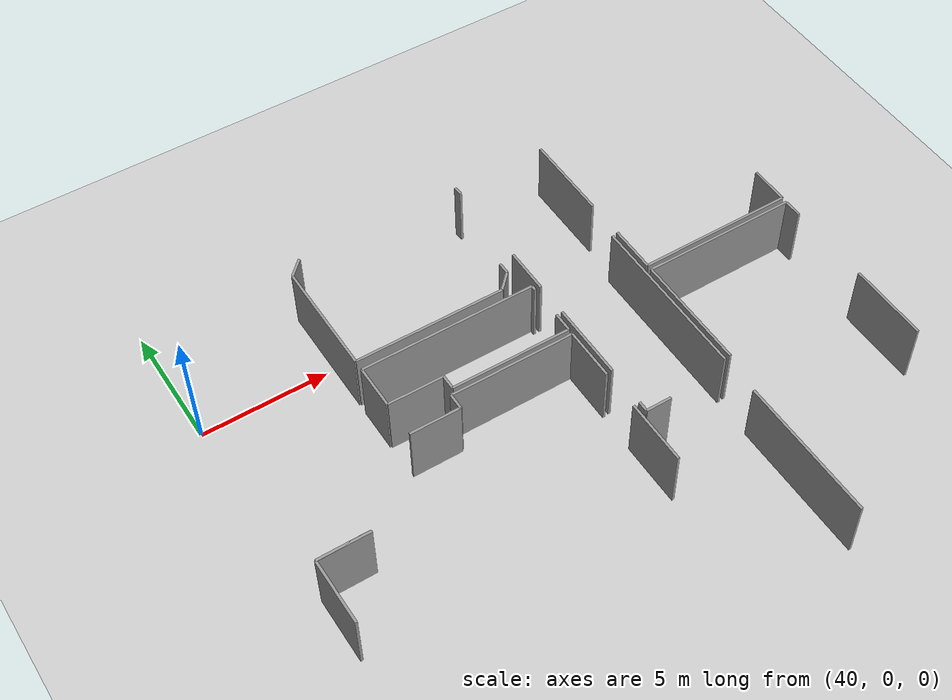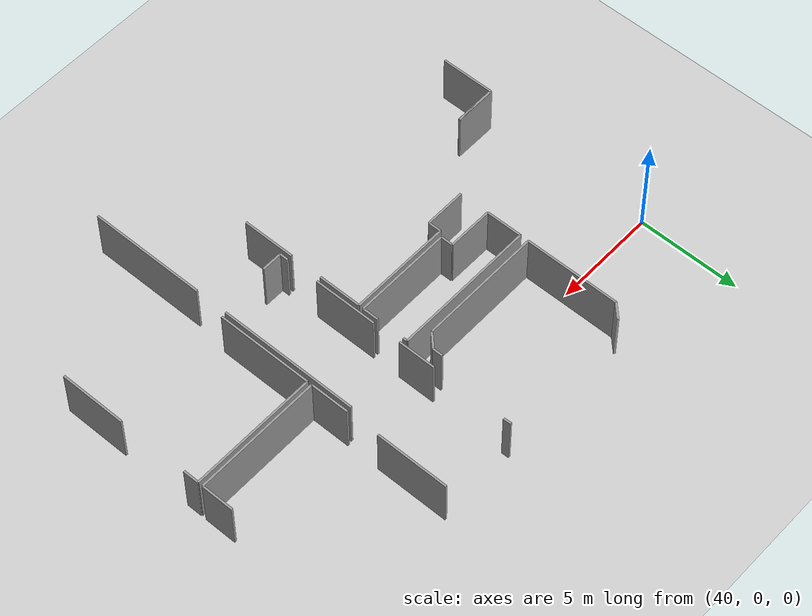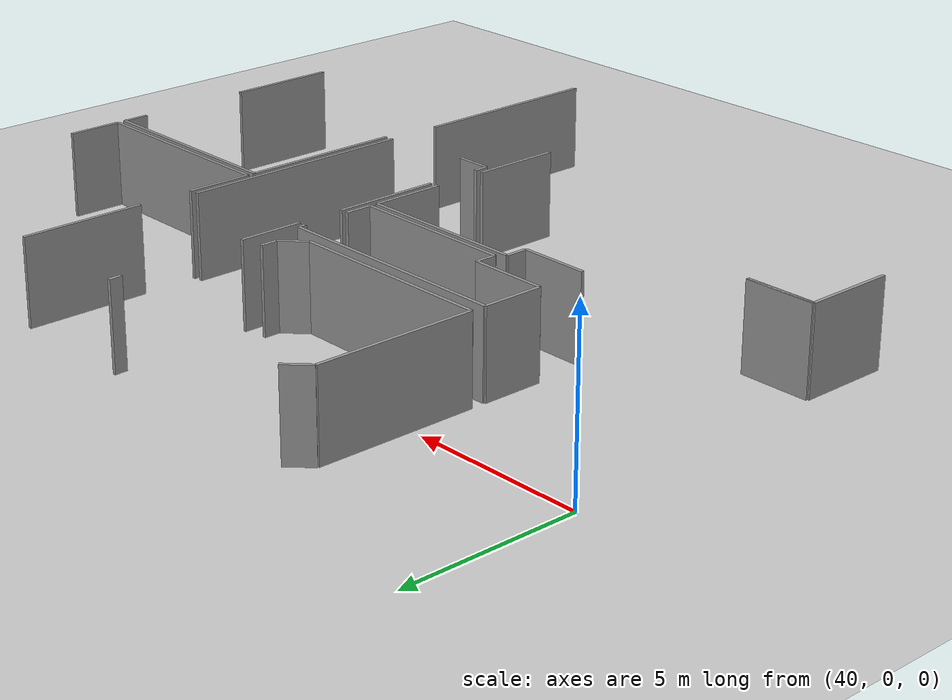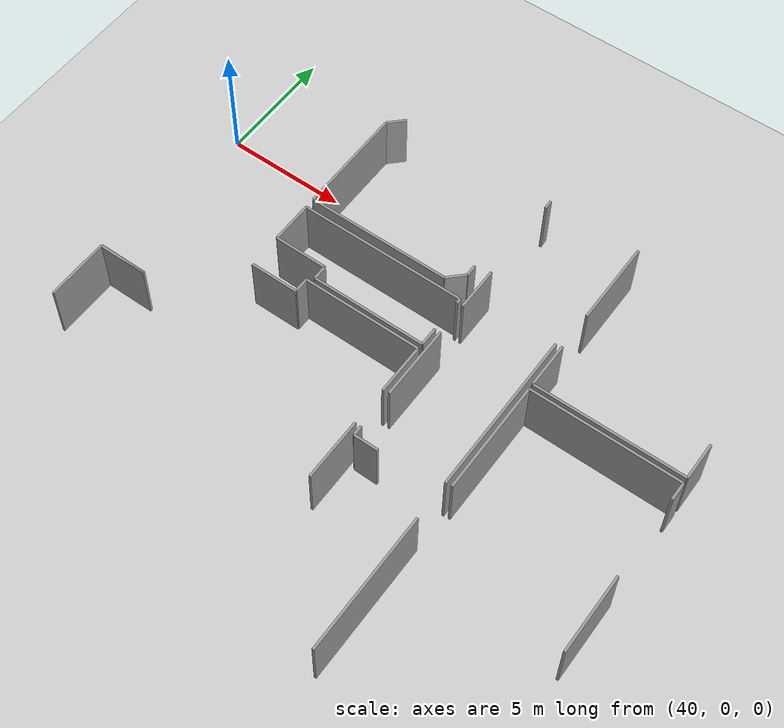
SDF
<sdf version="1.6">
 <world name="default">
  <model name="ground_plane">
   <static>1</static>
   <link name="link">
    <collision name="collision">
     <geometry><plane><normal>0 0 1</normal><size>100 100</size></plane></geometry>
     <surface><friction><ode><mu>100</mu><mu2>50</mu2></ode></friction></surface>
    </collision>
    <visual name="visual">
     <cast_shadows>0</cast_shadows>
     <geometry><plane><normal>0 0 1</normal><size>100 100</size></plane></geometry>
     <material>
      <script><uri>file://media/materials/scripts/gazebo.material</uri><name>Gazebo/Grey</name></script>
     </material>
    </visual>
   </link>
  </model>
  <model name="50010540">
   <static>1</static>
   <link name="Wall_245">
    <collision name="Wall_245_Collision">
     <geometry><box><size>4.60790482183 0.1 2.5</size></box></geometry>
     <pose>2.30395241091 0 1.25 0 0 0</pose>
    </collision>
    <visual name="Wall_245_Visual">
     <pose>2.30395241091 0 1.25 0 0 0</pose>
     <geometry><box><size>4.60790482183 0.1 2.5</size></box></geometry>
     <material>
      <script><uri>file://media/materials/scripts/gazebo.material</uri><name>Gazebo/Grey</name></script>
      <ambient>1 1 1 1</ambient>
     </material>
    </visual>
    <pose>107.857792014 -24.6736194525 0 0 0 1.57079632679</pose>
   </link>
   <link name="Wall_246">
    <collision name="Wall_246_Collision">
     <geometry><box><size>0.82382864834 0.1 2.5</size></box></geometry>
     <pose>0.41191432417 0 1.25 0 0 0</pose>
    </collision>
    <visual name="Wall_246_Visual">
     <pose>0.41191432417 0 1.25 0 0 0</pose>
     <geometry><box><size>0.82382864834 0.1 2.5</size></box></geometry>
     <material>
      <script><uri>file://media/materials/scripts/gazebo.material</uri><name>Gazebo/Grey</name></script>
      <ambient>1 1 1 1</ambient>
     </material>
    </visual>
    <pose>107.857792014 -20.0657146307 0 0 0 0.783870780775</pose>
   </link>
   <link name="Wall_252">
    <collision name="Wall_252_Collision">
     <geometry><box><size>0.477924587059 0.1 2.5</size></box></geometry>
     <pose>0.23896229353 0 1.25 0 0 0</pose>
    </collision>
    <visual name="Wall_252_Visual">
     <pose>0.23896229353 0 1.25 0 0 0</pose>
     <geometry><box><size>0.477924587059 0.1 2.5</size></box></geometry>
     <material>
      <script><uri>file://media/materials/scripts/gazebo.material</uri><name>Gazebo/Grey</name></script>
      <ambient>1 1 1 1</ambient>
     </material>
    </visual>
    <pose>114.430526162 -23.5935861504 0 0 0 -1.57079632679</pose>
   </link>
   <link name="Wall_253">
    <collision name="Wall_253_Collision">
     <geometry><box><size>0.841896793089 0.1 2.5</size></box></geometry>
     <pose>0.420948396545 0 1.25 0 0 0</pose>
    </collision>
    <visual name="Wall_253_Visual">
     <pose>0.420948396545 0 1.25 0 0 0</pose>
     <geometry><box><size>0.841896793089 0.1 2.5</size></box></geometry>
     <material>
      <script><uri>file://media/materials/scripts/gazebo.material</uri><name>Gazebo/Grey</name></script>
      <ambient>1 1 1 1</ambient>
     </material>
    </visual>
    <pose>114.430526162 -24.0715107374 0 0 0 -2.35331203848</pose>
   </link>
   <link name="Wall_254">
    <collision name="Wall_254_Collision">
     <geometry><box><size>5.97914380405 0.1 2.5</size></box></geometry>
     <pose>2.98957190203 0 1.25 0 0 0</pose>
    </collision>
    <visual name="Wall_254_Visual">
     <pose>2.98957190203 0 1.25 0 0 0</pose>
     <geometry><box><size>5.97914380405 0.1 2.5</size></box></geometry>
     <material>
      <script><uri>file://media/materials/scripts/gazebo.material</uri><name>Gazebo/Grey</name></script>
      <ambient>1 1 1 1</ambient>
     </material>
    </visual>
    <pose>113.836933656 -24.6685351484 0 0 0 -3.14074231366</pose>
   </link>
   <link name="Wall_269">
    <collision name="Wall_269_Collision">
     <geometry><box><size>2.04223785646 0.1 2.5</size></box></geometry>
     <pose>1.02111892823 0 1.25 0 0 0</pose>
    </collision>
    <visual name="Wall_269_Visual">
     <pose>1.02111892823 0 1.25 0 0 0</pose>
     <geometry><box><size>2.04223785646 0.1 2.5</size></box></geometry>
     <material>
      <script><uri>file://media/materials/scripts/gazebo.material</uri><name>Gazebo/Grey</name></script>
      <ambient>1 1 1 1</ambient>
     </material>
    </visual>
    <pose>104.925419614 -30.9579464496 0 0 0 3.14159265359</pose>
   </link>
   <link name="Wall_270">
    <collision name="Wall_270_Collision">
     <geometry><box><size>2.60684982872 0.1 2.5</size></box></geometry>
     <pose>1.30342491436 0 1.25 0 0 0</pose>
    </collision>
    <visual name="Wall_270_Visual">
     <pose>1.30342491436 0 1.25 0 0 0</pose>
     <geometry><box><size>2.60684982872 0.1 2.5</size></box></geometry>
     <material>
      <script><uri>file://media/materials/scripts/gazebo.material</uri><name>Gazebo/Grey</name></script>
      <ambient>1 1 1 1</ambient>
     </material>
    </visual>
    <pose>102.883181758 -30.9579464496 0 0 0 -1.57079632679</pose>
   </link>
   <link name="Wall_280">
    <collision name="Wall_280_Collision">
     <geometry><box><size>2.04808480619 0.1 2.5</size></box></geometry>
     <pose>1.0240424031 0 1.25 0 0 0</pose>
    </collision>
    <visual name="Wall_280_Visual">
     <pose>1.0240424031 0 1.25 0 0 0</pose>
     <geometry><box><size>2.04808480619 0.1 2.5</size></box></geometry>
     <material>
      <script><uri>file://media/materials/scripts/gazebo.material</uri><name>Gazebo/Grey</name></script>
      <ambient>1 1 1 1</ambient>
     </material>
    </visual>
    <pose>104.92669069 -30.9443459361 0 0 0 3.14159265359</pose>
   </link>
   <link name="Wall_285">
    <collision name="Wall_285_Collision">
     <geometry><box><size>1.75980476272 0.1 2.5</size></box></geometry>
     <pose>0.879902381361 0 1.25 0 0 0</pose>
    </collision>
    <visual name="Wall_285_Visual">
     <pose>0.879902381361 0 1.25 0 0 0</pose>
     <geometry><box><size>1.75980476272 0.1 2.5</size></box></geometry>
     <material>
      <script><uri>file://media/materials/scripts/gazebo.material</uri><name>Gazebo/Grey</name></script>
      <ambient>1 1 1 1</ambient>
     </material>
    </visual>
    <pose>107.855249862 -26.8603786535 0 0 0 1.57079632679</pose>
   </link>
   <link name="Wall_286">
    <collision name="Wall_286_Collision">
     <geometry><box><size>6.97439417339 0.1 2.5</size></box></geometry>
     <pose>3.48719708669 0 1.25 0 0 0</pose>
    </collision>
    <visual name="Wall_286_Visual">
     <pose>3.48719708669 0 1.25 0 0 0</pose>
     <geometry><box><size>6.97439417339 0.1 2.5</size></box></geometry>
     <material>
      <script><uri>file://media/materials/scripts/gazebo.material</uri><name>Gazebo/Grey</name></script>
      <ambient>1 1 1 1</ambient>
     </material>
    </visual>
    <pose>107.855249862 -25.1005738908 0 0 0 0.0</pose>
   </link>
   <link name="Wall_287">
    <collision name="Wall_287_Collision">
     <geometry><box><size>0.215066064177 0.1 2.5</size></box></geometry>
     <pose>0.107533032088 0 1.25 0 0 0</pose>
    </collision>
    <visual name="Wall_287_Visual">
     <pose>0.107533032088 0 1.25 0 0 0</pose>
     <geometry><box><size>0.215066064177 0.1 2.5</size></box></geometry>
     <material>
      <script><uri>file://media/materials/scripts/gazebo.material</uri><name>Gazebo/Grey</name></script>
      <ambient>1 1 1 1</ambient>
     </material>
    </visual>
    <pose>114.829644035 -25.1005738908 0 0 0 -1.57079632679</pose>
   </link>
   <link name="Wall_288">
    <collision name="Wall_288_Collision">
     <geometry><box><size>0.788829783854 0.1 2.5</size></box></geometry>
     <pose>0.394414891927 0 1.25 0 0 0</pose>
    </collision>
    <visual name="Wall_288_Visual">
     <pose>0.394414891927 0 1.25 0 0 0</pose>
     <geometry><box><size>0.788829783854 0.1 2.5</size></box></geometry>
     <material>
      <script><uri>file://media/materials/scripts/gazebo.material</uri><name>Gazebo/Grey</name></script>
      <ambient>1 1 1 1</ambient>
     </material>
    </visual>
    <pose>114.829644035 -26.6706070024 0 0 0 -1.57079632679</pose>
   </link>
   <link name="Wall_289">
    <collision name="Wall_289_Collision">
     <geometry><box><size>4.76145080618 0.1 2.5</size></box></geometry>
     <pose>2.38072540309 0 1.25 0 0 0</pose>
    </collision>
    <visual name="Wall_289_Visual">
     <pose>2.38072540309 0 1.25 0 0 0</pose>
     <geometry><box><size>4.76145080618 0.1 2.5</size></box></geometry>
     <material>
      <script><uri>file://media/materials/scripts/gazebo.material</uri><name>Gazebo/Grey</name></script>
      <ambient>1 1 1 1</ambient>
     </material>
    </visual>
    <pose>114.829644035 -27.4594367862 0 0 0 3.14159265359</pose>
   </link>
   <link name="Wall_290">
    <collision name="Wall_290_Collision">
     <geometry><box><size>0.590160600456 0.1 2.5</size></box></geometry>
     <pose>0.295080300228 0 1.25 0 0 0</pose>
    </collision>
    <visual name="Wall_290_Visual">
     <pose>0.295080300228 0 1.25 0 0 0</pose>
     <geometry><box><size>0.590160600456 0.1 2.5</size></box></geometry>
     <material>
      <script><uri>file://media/materials/scripts/gazebo.material</uri><name>Gazebo/Grey</name></script>
      <ambient>1 1 1 1</ambient>
     </material>
    </visual>
    <pose>110.068193229 -27.4594367862 0 0 0 1.57079632679</pose>
   </link>
   <link name="Wall_291">
    <collision name="Wall_291_Collision">
     <geometry><box><size>2.21296125419 0.1 2.5</size></box></geometry>
     <pose>1.1064806271 0 1.25 0 0 0</pose>
    </collision>
    <visual name="Wall_291_Visual">
     <pose>1.1064806271 0 1.25 0 0 0</pose>
     <geometry><box><size>2.21296125419 0.1 2.5</size></box></geometry>
     <material>
      <script><uri>file://media/materials/scripts/gazebo.material</uri><name>Gazebo/Grey</name></script>
      <ambient>1 1 1 1</ambient>
     </material>
    </visual>
    <pose>110.068193229 -26.8692761858 0 0 0 3.13757199748</pose>
   </link>
   <link name="Wall_292">
    <collision name="Wall_292_Collision">
     <geometry><box><size>1.89593700547 0.1 2.5</size></box></geometry>
     <pose>0.947968502736 0 1.25 0 0 0</pose>
    </collision>
    <visual name="Wall_292_Visual">
     <pose>0.947968502736 0 1.25 0 0 0</pose>
     <geometry><box><size>1.89593700547 0.1 2.5</size></box></geometry>
     <material>
      <script><uri>file://media/materials/scripts/gazebo.material</uri><name>Gazebo/Grey</name></script>
      <ambient>1 1 1 1</ambient>
     </material>
    </visual>
    <pose>118.869123657 -26.5217639993 0 0 0 1.57079632679</pose>
   </link>
   <link name="Wall_293">
    <collision name="Wall_293_Collision">
     <geometry><box><size>3.53702326705 0.1 2.5</size></box></geometry>
     <pose>1.76851163352 0 1.25 0 0 0</pose>
    </collision>
    <visual name="Wall_293_Visual">
     <pose>1.76851163352 0 1.25 0 0 0</pose>
     <geometry><box><size>3.53702326705 0.1 2.5</size></box></geometry>
     <material>
      <script><uri>file://media/materials/scripts/gazebo.material</uri><name>Gazebo/Grey</name></script>
      <ambient>1 1 1 1</ambient>
     </material>
    </visual>
    <pose>118.869123657 -23.0279573173 0 0 0 1.57079632679</pose>
   </link>
   <link name="Wall_296">
    <collision name="Wall_296_Collision">
     <geometry><box><size>1.56825360509 0.1 2.5</size></box></geometry>
     <pose>0.784126802545 0 1.25 0 0 0</pose>
    </collision>
    <visual name="Wall_296_Visual">
     <pose>0.784126802545 0 1.25 0 0 0</pose>
     <geometry><box><size>1.56825360509 0.1 2.5</size></box></geometry>
     <material>
      <script><uri>file://media/materials/scripts/gazebo.material</uri><name>Gazebo/Grey</name></script>
      <ambient>1 1 1 1</ambient>
     </material>
    </visual>
    <pose>125.045282084 -24.9404183111 0 0 0 -1.57079632679</pose>
   </link>
   <link name="Wall_297">
    <collision name="Wall_297_Collision">
     <geometry><box><size>6.17617230305 0.1 2.5</size></box></geometry>
     <pose>3.08808615153 0 1.25 0 0 0</pose>
    </collision>
    <visual name="Wall_297_Visual">
     <pose>3.08808615153 0 1.25 0 0 0</pose>
     <geometry><box><size>6.17617230305 0.1 2.5</size></box></geometry>
     <material>
      <script><uri>file://media/materials/scripts/gazebo.material</uri><name>Gazebo/Grey</name></script>
      <ambient>1 1 1 1</ambient>
     </material>
    </visual>
    <pose>125.045282084 -26.5086719162 0 0 0 -3.13947287903</pose>
   </link>
   <link name="Wall_300">
    <collision name="Wall_300_Collision">
     <geometry><box><size>1.99813151824 0.1 2.5</size></box></geometry>
     <pose>0.999065759118 0 1.25 0 0 0</pose>
    </collision>
    <visual name="Wall_300_Visual">
     <pose>0.999065759118 0 1.25 0 0 0</pose>
     <geometry><box><size>1.99813151824 0.1 2.5</size></box></geometry>
     <material>
      <script><uri>file://media/materials/scripts/gazebo.material</uri><name>Gazebo/Grey</name></script>
      <ambient>1 1 1 1</ambient>
     </material>
    </visual>
    <pose>107.862876318 -28.3209721189 0 0 0 0.0</pose>
   </link>
   <link name="Wall_301">
    <collision name="Wall_301_Collision">
     <geometry><box><size>0.627403128118 0.1 2.5</size></box></geometry>
     <pose>0.313701564059 0 1.25 0 0 0</pose>
    </collision>
    <visual name="Wall_301_Visual">
     <pose>0.313701564059 0 1.25 0 0 0</pose>
     <geometry><box><size>0.627403128118 0.1 2.5</size></box></geometry>
     <material>
      <script><uri>file://media/materials/scripts/gazebo.material</uri><name>Gazebo/Grey</name></script>
      <ambient>1 1 1 1</ambient>
     </material>
    </visual>
    <pose>109.861007836 -28.3209721189 0 0 0 1.57079632679</pose>
   </link>
   <link name="Wall_302">
    <collision name="Wall_302_Collision">
     <geometry><box><size>4.95846759074 0.1 2.5</size></box></geometry>
     <pose>2.47923379537 0 1.25 0 0 0</pose>
    </collision>
    <visual name="Wall_302_Visual">
     <pose>2.47923379537 0 1.25 0 0 0</pose>
     <geometry><box><size>4.95846759074 0.1 2.5</size></box></geometry>
     <material>
      <script><uri>file://media/materials/scripts/gazebo.material</uri><name>Gazebo/Grey</name></script>
      <ambient>1 1 1 1</ambient>
     </material>
    </visual>
    <pose>109.861007836 -27.6935689908 0 0 0 0.0</pose>
   </link>
   <link name="Wall_303">
    <collision name="Wall_303_Collision">
     <geometry><box><size>2.11570605096 0.1 2.5</size></box></geometry>
     <pose>1.05785302548 0 1.25 0 0 0</pose>
    </collision>
    <visual name="Wall_303_Visual">
     <pose>1.05785302548 0 1.25 0 0 0</pose>
     <geometry><box><size>2.11570605096 0.1 2.5</size></box></geometry>
     <material>
      <script><uri>file://media/materials/scripts/gazebo.material</uri><name>Gazebo/Grey</name></script>
      <ambient>1 1 1 1</ambient>
     </material>
    </visual>
    <pose>114.819475427 -27.6935689908 0 0 0 -1.57079632679</pose>
   </link>
   <link name="Wall_304">
    <collision name="Wall_304_Collision">
     <geometry><box><size>2.5627434905 0.1 2.5</size></box></geometry>
     <pose>1.28137174525 0 1.25 0 0 0</pose>
    </collision>
    <visual name="Wall_304_Visual">
     <pose>1.28137174525 0 1.25 0 0 0</pose>
     <geometry><box><size>2.5627434905 0.1 2.5</size></box></geometry>
     <material>
      <script><uri>file://media/materials/scripts/gazebo.material</uri><name>Gazebo/Grey</name></script>
      <ambient>1 1 1 1</ambient>
     </material>
    </visual>
    <pose>114.819475427 -31.3968490025 0 0 0 -1.57079632679</pose>
   </link>
   <link name="Wall_329">
    <collision name="Wall_329_Collision">
     <geometry><box><size>4.68683864325 0.1 2.5</size></box></geometry>
     <pose>2.34341932163 0 1.25 0 0 0</pose>
    </collision>
    <visual name="Wall_329_Visual">
     <pose>2.34341932163 0 1.25 0 0 0</pose>
     <geometry><box><size>4.68683864325 0.1 2.5</size></box></geometry>
     <material>
      <script><uri>file://media/materials/scripts/gazebo.material</uri><name>Gazebo/Grey</name></script>
      <ambient>1 1 1 1</ambient>
     </material>
    </visual>
    <pose>118.872936885 -31.4400655875 0 0 0 1.57079632679</pose>
   </link>
   <link name="Wall_330">
    <collision name="Wall_330_Collision">
     <geometry><box><size>6.1710741228 0.1 2.5</size></box></geometry>
     <pose>3.0855370614 0 1.25 0 0 0</pose>
    </collision>
    <visual name="Wall_330_Visual">
     <pose>3.0855370614 0 1.25 0 0 0</pose>
     <geometry><box><size>6.1710741228 0.1 2.5</size></box></geometry>
     <material>
      <script><uri>file://media/materials/scripts/gazebo.material</uri><name>Gazebo/Grey</name></script>
      <ambient>1 1 1 1</ambient>
     </material>
    </visual>
    <pose>118.872936885 -26.7532269443 0 0 0 0.0</pose>
   </link>
   <link name="Wall_331">
    <collision name="Wall_331_Collision">
     <geometry><box><size>0.753493870236 0.1 2.5</size></box></geometry>
     <pose>0.376746935118 0 1.25 0 0 0</pose>
    </collision>
    <visual name="Wall_331_Visual">
     <pose>0.376746935118 0 1.25 0 0 0</pose>
     <geometry><box><size>0.753493870236 0.1 2.5</size></box></geometry>
     <material>
      <script><uri>file://media/materials/scripts/gazebo.material</uri><name>Gazebo/Grey</name></script>
      <ambient>1 1 1 1</ambient>
     </material>
    </visual>
    <pose>125.044011008 -26.7532269443 0 0 0 -1.57079632679</pose>
   </link>
   <link name="Wall_332">
    <collision name="Wall_332_Collision">
     <geometry><box><size>3.20044233446 0.1 2.5</size></box></geometry>
     <pose>1.60022116723 0 1.25 0 0 0</pose>
    </collision>
    <visual name="Wall_332_Visual">
     <pose>1.60022116723 0 1.25 0 0 0</pose>
     <geometry><box><size>3.20044233446 0.1 2.5</size></box></geometry>
     <material>
      <script><uri>file://media/materials/scripts/gazebo.material</uri><name>Gazebo/Grey</name></script>
      <ambient>1 1 1 1</ambient>
     </material>
    </visual>
    <pose>125.044011008 -30.9198141687 0 0 0 -1.57079632679</pose>
   </link>
   <link name="Wall_337">
    <collision name="Wall_337_Collision">
     <geometry><box><size>6.80457841586 0.1 2.5</size></box></geometry>
     <pose>3.40228920793 0 1.25 0 0 0</pose>
    </collision>
    <visual name="Wall_337_Visual">
     <pose>3.40228920793 0 1.25 0 0 0</pose>
     <geometry><box><size>6.80457841586 0.1 2.5</size></box></geometry>
     <material>
      <script><uri>file://media/materials/scripts/gazebo.material</uri><name>Gazebo/Grey</name></script>
      <ambient>1 1 1 1</ambient>
     </material>
    </visual>
    <pose>118.623805983 -24.6639592747 0 0 0 -1.57079632679</pose>
   </link>
   <link name="Wall_338">
    <collision name="Wall_338_Collision">
     <geometry><box><size>5.68031166784 0.1 2.5</size></box></geometry>
     <pose>2.84015583392 0 1.25 0 0 0</pose>
    </collision>
    <visual name="Wall_338_Visual">
     <pose>2.84015583392 0 1.25 0 0 0</pose>
     <geometry><box><size>5.68031166784 0.1 2.5</size></box></geometry>
     <material>
      <script><uri>file://media/materials/scripts/gazebo.material</uri><name>Gazebo/Grey</name></script>
      <ambient>1 1 1 1</ambient>
     </material>
    </visual>
    <pose>118.623805983 -33.0660260443 0 0 0 -1.57079632679</pose>
   </link>
   <link name="Wall_345">
    <collision name="Wall_345_Collision">
     <geometry><box><size>1.00542113927 0.1 2.5</size></box></geometry>
     <pose>0.502710569633 0 1.25 0 0 0</pose>
    </collision>
    <visual name="Wall_345_Visual">
     <pose>0.502710569633 0 1.25 0 0 0</pose>
     <geometry><box><size>1.00542113927 0.1 2.5</size></box></geometry>
     <material>
      <script><uri>file://media/materials/scripts/gazebo.material</uri><name>Gazebo/Grey</name></script>
      <ambient>1 1 1 1</ambient>
     </material>
    </visual>
    <pose>116.072756392 -31.8006698571 0 0 0 3.14159265359</pose>
   </link>
   <link name="Wall_346">
    <collision name="Wall_346_Collision">
     <geometry><box><size>0.412591279147 0.1 2.5</size></box></geometry>
     <pose>0.206295639574 0 1.25 0 0 0</pose>
    </collision>
    <visual name="Wall_346_Visual">
     <pose>0.206295639574 0 1.25 0 0 0</pose>
     <geometry><box><size>0.412591279147 0.1 2.5</size></box></geometry>
     <material>
      <script><uri>file://media/materials/scripts/gazebo.material</uri><name>Gazebo/Grey</name></script>
      <ambient>1 1 1 1</ambient>
     </material>
    </visual>
    <pose>115.067335253 -31.8006698571 0 0 0 1.57079632679</pose>
   </link>
   <link name="Wall_347">
    <collision name="Wall_347_Collision">
     <geometry><box><size>3.10790799952 0.1 2.5</size></box></geometry>
     <pose>1.55395399976 0 1.25 0 0 0</pose>
    </collision>
    <visual name="Wall_347_Visual">
     <pose>1.55395399976 0 1.25 0 0 0</pose>
     <geometry><box><size>3.10790799952 0.1 2.5</size></box></geometry>
     <material>
      <script><uri>file://media/materials/scripts/gazebo.material</uri><name>Gazebo/Grey</name></script>
      <ambient>1 1 1 1</ambient>
     </material>
    </visual>
    <pose>115.067335253 -29.7788963247 0 0 0 1.57079632679</pose>
   </link>
   <link name="Wall_348">
    <collision name="Wall_348_Collision">
     <geometry><box><size>1.83708618531 0.1 2.5</size></box></geometry>
     <pose>0.918543092655 0 1.25 0 0 0</pose>
    </collision>
    <visual name="Wall_348_Visual">
     <pose>0.918543092655 0 1.25 0 0 0</pose>
     <geometry><box><size>1.83708618531 0.1 2.5</size></box></geometry>
     <material>
      <script><uri>file://media/materials/scripts/gazebo.material</uri><name>Gazebo/Grey</name></script>
      <ambient>1 1 1 1</ambient>
     </material>
    </visual>
    <pose>115.067335253 -25.3048358088 0 0 0 1.57079632679</pose>
   </link>
   <link name="Wall_349">
    <collision name="Wall_349_Collision">
     <geometry><box><size>0.369258175047 0.1 2.5</size></box></geometry>
     <pose>0.184629087523 0 1.25 0 0 0</pose>
    </collision>
    <visual name="Wall_349_Visual">
     <pose>0.184629087523 0 1.25 0 0 0</pose>
     <geometry><box><size>0.369258175047 0.1 2.5</size></box></geometry>
     <material>
      <script><uri>file://media/materials/scripts/gazebo.material</uri><name>Gazebo/Grey</name></script>
      <ambient>1 1 1 1</ambient>
     </material>
    </visual>
    <pose>115.067335253 -19.8531907186 0 0 0 1.60867004351</pose>
   </link>
   <pose>-62.5 22.811372635 0 0 0 0</pose>
  </model>
 </world>
</sdf>
